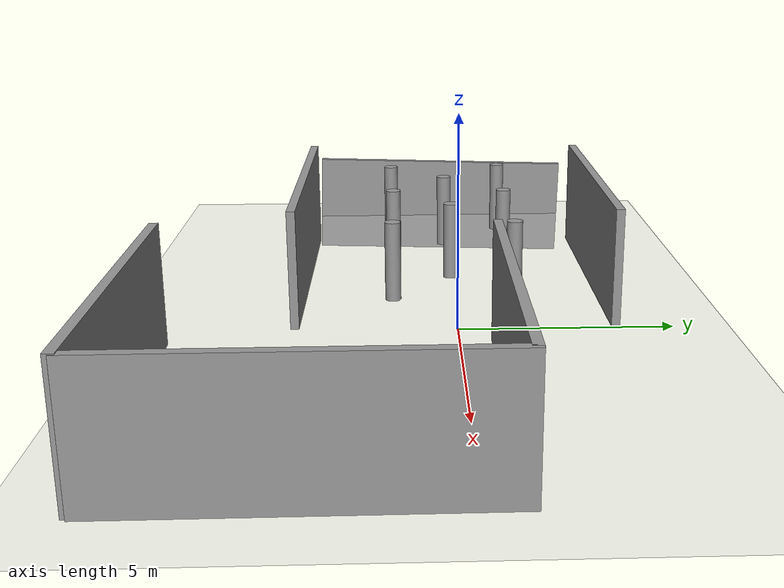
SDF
<sdf version="1.7">
 <world name="default">
  <light name="sun" type="directional">
   <pose>0 0 10 0 -0 0</pose>
   <diffuse>0.8 0.8 0.8 1</diffuse>
   <specular>0.2 0.2 0.2 1</specular>
   <attenuation>
    <range>1000</range>
    <constant>0.9</constant>
    <linear>0.01</linear>
    <quadratic>0.001</quadratic>
   </attenuation>
   <direction>-0.5 0.1 -0.9</direction>
   <spot><inner_angle>0</inner_angle><outer_angle>0</outer_angle><falloff>0</falloff></spot>
  </light>
  <model name="ground_plane">
   <static>1</static>
   <link name="link">
    <collision name="collision">
     <geometry><plane><normal>0 0 1</normal><size>100 100</size></plane></geometry>
     <surface>
      <contact><collide_bitmask>65535</collide_bitmask></contact>
      <friction><ode><mu>100</mu><mu2>50</mu2></ode></friction>
     </surface>
    </collision>
    <visual name="visual">
     <cast_shadows>0</cast_shadows>
     <geometry><plane><normal>0 0 1</normal><size>100 100</size></plane></geometry>
     <material>
      <script><uri>file://media/materials/scripts/gazebo.material</uri><name>Gazebo/Grey</name></script>
     </material>
    </visual>
   </link>
  </model>
  <gravity>0 0 -9.8</gravity>
  <magnetic_field>6e-06 2.3e-05 -4.2e-05</magnetic_field>
  <atmosphere type="adiabatic"/>
  <physics type="ode">
   <max_step_size>0.001</max_step_size>
   <real_time_factor>1</real_time_factor>
   <real_time_update_rate>1000</real_time_update_rate>
  </physics>
  <scene><ambient>0.4 0.4 0.4 1</ambient><background>0.7 0.7 0.7 1</background><shadows>1</shadows></scene>
  <spherical_coordinates>
   <surface_model>EARTH_WGS84</surface_model>
   <latitude_deg>0</latitude_deg>
   <longitude_deg>0</longitude_deg>
   <elevation>0</elevation>
   <heading_deg>0</heading_deg>
  </spherical_coordinates>
  <model name="grey_wall_clone">
   <static>1</static>
   <link name="link">
    <pose>0 0 1.4 0 -0 0</pose>
    <collision name="collision"><geometry><box><size>7.5 0.2 2.8</size></box></geometry></collision>
    <visual name="visual">
     <cast_shadows>0</cast_shadows>
     <geometry><box><size>7.5 0.2 2.8</size></box></geometry>
     <material>
      <script>
       <uri>model://grey_wall/materials/scripts</uri>
       <uri>model://grey_wall/materials/textures</uri>
       <name>vrc/grey_wall</name>
      </script>
     </material>
    </visual>
   </link>
   <pose>-3.80422 3.66587 0 0 -0 0</pose>
  </model>
  <model name="grey_wall_clone_0">
   <static>1</static>
   <link name="link">
    <pose>0 0 1.4 0 -0 0</pose>
    <collision name="collision"><geometry><box><size>7.5 0.2 2.8</size></box></geometry></collision>
    <visual name="visual">
     <cast_shadows>0</cast_shadows>
     <geometry><box><size>7.5 0.2 2.8</size></box></geometry>
     <material>
      <script>
       <uri>model://grey_wall/materials/scripts</uri>
       <uri>model://grey_wall/materials/textures</uri>
       <name>vrc/grey_wall</name>
      </script>
     </material>
    </visual>
   </link>
   <pose>-3.88267 -3.75595 0 0 -0 0</pose>
  </model>
  <model name="grey_wall_clone_clone">
   <static>1</static>
   <link name="link">
    <pose>0 0 1.4 0 -0 0</pose>
    <collision name="collision"><geometry><box><size>7.5 0.2 2.8</size></box></geometry></collision>
    <visual name="visual">
     <cast_shadows>0</cast_shadows>
     <geometry><box><size>7.5 0.2 2.8</size></box></geometry>
     <material>
      <script>
       <uri>model://grey_wall/materials/scripts</uri>
       <uri>model://grey_wall/materials/textures</uri>
       <name>vrc/grey_wall</name>
      </script>
     </material>
    </visual>
   </link>
   <pose>-10.5783 -0.100472 -1.10068 -0.02354 0.030124 1.58206</pose>
  </model>
  <model name="grey_wall">
   <static>1</static>
   <link name="link">
    <pose>0 0 1.4 0 -0 0</pose>
    <collision name="collision"><geometry><box><size>7.5 0.2 2.8</size></box></geometry></collision>
    <visual name="visual">
     <cast_shadows>0</cast_shadows>
     <geometry><box><size>7.5 0.2 2.8</size></box></geometry>
     <material>
      <script>
       <uri>model://grey_wall/materials/scripts</uri>
       <uri>model://grey_wall/materials/textures</uri>
       <name>vrc/grey_wall</name>
      </script>
     </material>
    </visual>
   </link>
   <pose>4.4311 0.82025 0 0 -0 0</pose>
  </model>
  <model name="grey_wall_clone_1_clone">
   <static>1</static>
   <link name="link">
    <pose>0 0 1.4 0 -0 0</pose>
    <collision name="collision"><geometry><box><size>7.5 0.2 2.8</size></box></geometry></collision>
    <visual name="visual">
     <cast_shadows>0</cast_shadows>
     <geometry><box><size>7.5 0.2 2.8</size></box></geometry>
     <material>
      <script>
       <uri>model://grey_wall/materials/scripts</uri>
       <uri>model://grey_wall/materials/textures</uri>
       <name>vrc/grey_wall</name>
      </script>
     </material>
    </visual>
   </link>
   <pose>8.18724 -2.8403 0 0 0 -1.56673</pose>
  </model>
  <model name="grey_wall_clone_1">
   <static>1</static>
   <link name="link">
    <pose>0 0 1.4 0 -0 0</pose>
    <collision name="collision"><geometry><box><size>7.5 0.2 2.8</size></box></geometry></collision>
    <visual name="visual">
     <cast_shadows>0</cast_shadows>
     <geometry><box><size>7.5 0.2 2.8</size></box></geometry>
     <material>
      <script>
       <uri>model://grey_wall/materials/scripts</uri>
       <uri>model://grey_wall/materials/textures</uri>
       <name>vrc/grey_wall</name>
      </script>
     </material>
    </visual>
   </link>
   <pose>4.53373 -6.57682 0.01885 0 -0 0</pose>
  </model>
  <model name="unit_cylinder_0_clone">
   <pose>-5.5 1.5 0.992556 0 0 -0.007304</pose>
   <link name="link">
    <inertial>
     <mass>1</mass>
     <inertia><ixx>0.145833</ixx><ixy>0</ixy><ixz>0</ixz><iyy>0.145833</iyy><iyz>0</iyz><izz>0.125</izz></inertia>
    </inertial>
    <collision name="collision">
     <geometry><cylinder><radius>0.194173</radius><length>1.98512</length></cylinder></geometry>
    </collision>
    <visual name="visual">
     <geometry><cylinder><radius>0.194173</radius><length>1.98512</length></cylinder></geometry>
     <material>
      <script><name>Gazebo/Grey</name><uri>file://media/materials/scripts/gazebo.material</uri></script>
     </material>
    </visual>
   </link>
  </model>
  <model name="unit_cylinder_0_clone_clone">
   <pose>-2.2 1.5 0.992556 0 0 -0.007306</pose>
   <link name="link">
    <inertial>
     <mass>1</mass>
     <inertia><ixx>0.145833</ixx><ixy>0</ixy><ixz>0</ixz><iyy>0.145833</iyy><iyz>0</iyz><izz>0.125</izz></inertia>
    </inertial>
    <collision name="collision">
     <geometry><cylinder><radius>0.194172</radius><length>1.98512</length></cylinder></geometry>
    </collision>
    <visual name="visual">
     <geometry><cylinder><radius>0.194172</radius><length>1.98512</length></cylinder></geometry>
     <material>
      <script><name>Gazebo/Grey</name><uri>file://media/materials/scripts/gazebo.material</uri></script>
     </material>
    </visual>
   </link>
  </model>
  <model name="unit_cylinder_0_clone_clone_0">
   <pose>-5.5 -1.5 0.992556 0 0 -0.00731</pose>
   <link name="link">
    <inertial>
     <mass>1</mass>
     <inertia><ixx>0.145833</ixx><ixy>0</ixy><ixz>0</ixz><iyy>0.145833</iyy><iyz>0</iyz><izz>0.125</izz></inertia>
    </inertial>
    <collision name="collision">
     <geometry><cylinder><radius>0.194172</radius><length>1.98512</length></cylinder></geometry>
    </collision>
    <visual name="visual">
     <geometry><cylinder><radius>0.194172</radius><length>1.98512</length></cylinder></geometry>
     <material>
      <script><name>Gazebo/Grey</name><uri>file://media/materials/scripts/gazebo.material</uri></script>
     </material>
    </visual>
   </link>
  </model>
  <model name="unit_cylinder_0_clone_clone_1">
   <pose>-2.2 -1.5 0.992555 0 0 -0.007309</pose>
   <link name="link">
    <inertial>
     <mass>1</mass>
     <inertia><ixx>0.145833</ixx><ixy>0</ixy><ixz>0</ixz><iyy>0.145833</iyy><iyz>0</iyz><izz>0.125</izz></inertia>
    </inertial>
    <collision name="collision">
     <geometry><cylinder><radius>0.194172</radius><length>1.98512</length></cylinder></geometry>
    </collision>
    <visual name="visual">
     <geometry><cylinder><radius>0.194172</radius><length>1.98512</length></cylinder></geometry>
     <material>
      <script><name>Gazebo/Grey</name><uri>file://media/materials/scripts/gazebo.material</uri></script>
     </material>
    </visual>
   </link>
  </model>
  <model name="unit_cylinder_0_clone_clone_clone">
   <pose>-4 1e-06 0.992556 0 0 -0.007314</pose>
   <link name="link">
    <inertial>
     <mass>1</mass>
     <inertia><ixx>0.145833</ixx><ixy>0</ixy><ixz>0</ixz><iyy>0.145833</iyy><iyz>0</iyz><izz>0.125</izz></inertia>
    </inertial>
    <collision name="collision">
     <geometry><cylinder><radius>0.194172</radius><length>1.98512</length></cylinder></geometry>
    </collision>
    <visual name="visual">
     <geometry><cylinder><radius>0.194172</radius><length>1.98512</length></cylinder></geometry>
     <material>
      <script><name>Gazebo/Grey</name><uri>file://media/materials/scripts/gazebo.material</uri></script>
     </material>
    </visual>
   </link>
  </model>
  <model name="unit_cylinder_0_clone_clone_2">
   <pose>-8.77485 1.59099 0.992556 0 0 -0.008677</pose>
   <link name="link">
    <inertial>
     <mass>1</mass>
     <inertia><ixx>0.145833</ixx><ixy>0</ixy><ixz>0</ixz><iyy>0.145833</iyy><iyz>0</iyz><izz>0.125</izz></inertia>
    </inertial>
    <collision name="collision">
     <geometry><cylinder><radius>0.194173</radius><length>1.98512</length></cylinder></geometry>
    </collision>
    <visual name="visual">
     <geometry><cylinder><radius>0.194173</radius><length>1.98512</length></cylinder></geometry>
     <material>
      <script><name>Gazebo/Grey</name><uri>file://media/materials/scripts/gazebo.material</uri></script>
     </material>
    </visual>
   </link>
  </model>
  <model name="unit_cylinder_0_clone_clone_clone_clone">
   <pose>-7.16426 -0.063325 0.992556 0 0 -0.008263</pose>
   <link name="link">
    <inertial>
     <mass>1</mass>
     <inertia><ixx>0.145833</ixx><ixy>0</ixy><ixz>0</ixz><iyy>0.145833</iyy><iyz>0</iyz><izz>0.125</izz></inertia>
    </inertial>
    <collision name="collision">
     <geometry><cylinder><radius>0.194172</radius><length>1.98512</length></cylinder></geometry>
    </collision>
    <visual name="visual">
     <geometry><cylinder><radius>0.194172</radius><length>1.98512</length></cylinder></geometry>
     <material>
      <script><name>Gazebo/Grey</name><uri>file://media/materials/scripts/gazebo.material</uri></script>
     </material>
    </visual>
   </link>
  </model>
  <model name="unit_cylinder_0_clone_clone_clone_clone_0">
   <pose>-8.54239 -1.58548 0.992556 0 0 -0.008126</pose>
   <link name="link">
    <inertial>
     <mass>1</mass>
     <inertia><ixx>0.145833</ixx><ixy>0</ixy><ixz>0</ixz><iyy>0.145833</iyy><iyz>0</iyz><izz>0.125</izz></inertia>
    </inertial>
    <collision name="collision">
     <geometry><cylinder><radius>0.194172</radius><length>1.98512</length></cylinder></geometry>
    </collision>
    <visual name="visual">
     <geometry><cylinder><radius>0.194172</radius><length>1.98512</length></cylinder></geometry>
     <material>
      <script><name>Gazebo/Grey</name><uri>file://media/materials/scripts/gazebo.material</uri></script>
     </material>
    </visual>
   </link>
  </model>
 </world>
</sdf>
